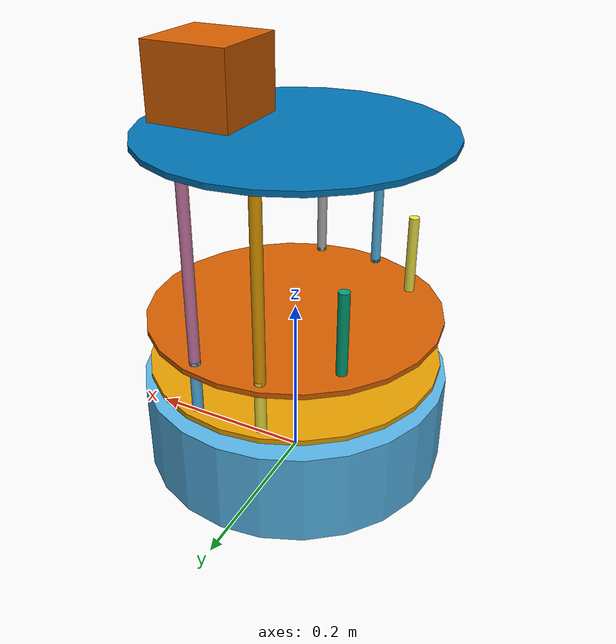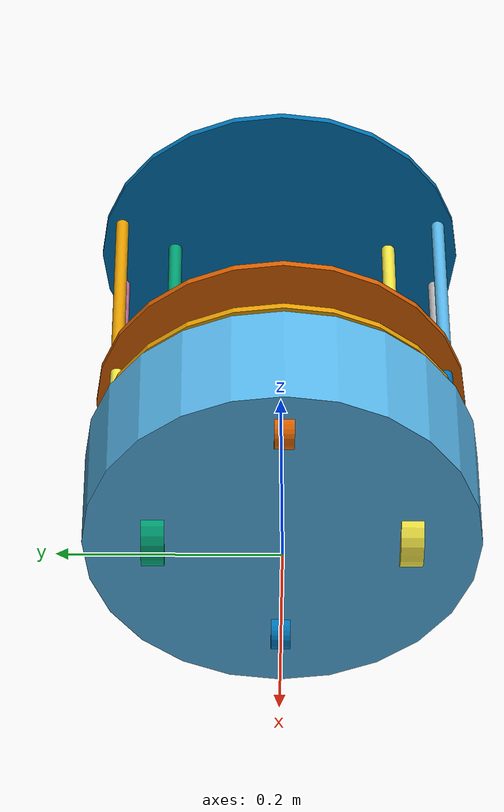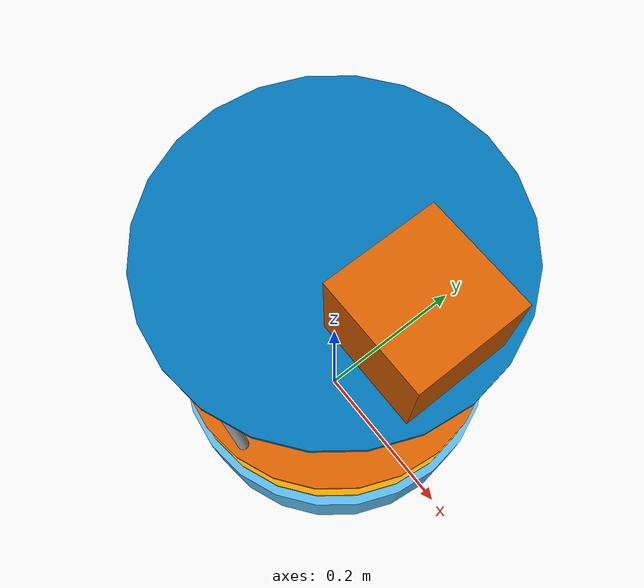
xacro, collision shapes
<?xml version="1.0"?>
<!--
    - Base      : kobuki
    - Stacks    : hexagons
    - 3d Sensor : kinect
-->
<robot name="turtlebot" xmlns:xacro="http://ros.org/wiki/xacro">
  <xacro:include filename="$(find follow_simulation_description)/urdf/turtlebot_common_library.urdf.xacro" />
  <xacro:include filename="$(find follow_simulation_description)/urdf/kobuki.urdf.xacro" />
  <xacro:include filename="$(find follow_simulation_description)/urdf/stacks/hexagons.urdf.xacro"/>
  <xacro:include filename="$(find follow_simulation_description)/urdf/sensors/hokuyo.urdf.xacro"/>
  <xacro:include filename="$(find follow_simulation_description)/urdf/kobuki_move.urdf.xacro"/>
  <xacro:include filename="$(find follow_simulation_description)/urdf/turtlebot_gazebo.urdf.xacro"/>
  <xacro:include filename="$(find follow_simulation_description)/urdf/kobuki_gazebo.urdf.xacro"/>

  <xacro:kobuki ns="robot1/"/>
  <xacro:kobuki_sim ns="robot1/"/>
  <xacro:stack_hexagons parent="robot1/base_link" ns="robot1/"/>
  <xacro:sensor_hokuyo ns="robot1/"/>

  <xacro:odom_vel ns="robot1/"/>
  <xacro:turtlebot_sim_2dsensor ns="robot1/"/>
</robot>

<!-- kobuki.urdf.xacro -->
<robot name="kobuki" xmlns:xacro="http://ros.org/wiki/xacro">
  <xacro:include filename="$(find follow_simulation_description)/urdf/common_properties.urdf.xacro"/>

  <!-- Kobuki -->
  <xacro:macro name="kobuki" params="ns">
    <link name="${ns}base_footprint"/>
    <joint name="${ns}base_joint" type="fixed">
      <origin xyz="0 0 0.0102" rpy="0 0 0" />
      <parent link="${ns}base_footprint"/>
      <child link="${ns}base_link" />
    </joint>
    <link name="${ns}base_link">
      <visual>
        <geometry>
          <!-- new mesh -->
          <mesh filename="package://follow_simulation_description/meshes/main_body.dae" />
        </geometry>
        <origin xyz="0.001 0 0.05199" rpy="0 0 0"/>
      </visual>
      <collision name="base">
        <geometry>
          <cylinder length="0.10938" radius="0.178"/>
        </geometry>
        <origin xyz="0.0 0 0.05949" rpy="0 0 0"/>
      </collision>
      <inertial>
        <!-- COM experimentally determined -->
        <origin xyz="0.01 0 0"/>
        <mass value="2.4"/> <!-- 2.4/2.6 kg for small/big battery pack -->
        <inertia ixx="0.019995" ixy="0.0" ixz="0.0"
                 iyy="0.019995" iyz="0.0"
                 izz="0.03675" />
      </inertial>
    </link>

    <joint name="${ns}wheel_left_joint" type="continuous">
      <parent link="${ns}base_link"/>
      <child link="${ns}wheel_left_link"/>
      <origin xyz="0.00 ${0.23/2} 0.0250" rpy="${-M_PI/2} 0 0"/>
      <axis xyz="0 0 1"/>
    </joint>
    <link name="${ns}wheel_left_link">
      <visual>
        <geometry>
          <mesh filename="package://follow_simulation_description/meshes/wheel.dae"/>
        </geometry>
        <origin xyz="0 0 0" rpy="0 0 0"/>
      </visual>
      <collision>
        <geometry>
          <cylinder length="0.0206" radius="0.035"/>
        </geometry>
        <origin rpy="0 0 0" xyz="0 0 0"/>
      </collision>
      <inertial>
        <mass value="0.01" />
        <origin xyz="0 0 0" />
        <inertia ixx="0.001" ixy="0.0" ixz="0.0"
                 iyy="0.001" iyz="0.0"
                 izz="0.001" />
      </inertial>
    </link>

    <joint name="${ns}wheel_right_joint" type="continuous">
      <parent link="${ns}base_link"/>
      <child link="${ns}wheel_right_link"/>
      <origin xyz="0.00 -${0.23/2} 0.0250" rpy="${-M_PI/2} 0 0"/>
      <axis xyz="0 0 1"/>
    </joint>
    <link name="${ns}wheel_right_link">
      <visual>
        <geometry>
          <mesh filename="package://follow_simulation_description/meshes/wheel.dae"/>
        </geometry>
        <origin xyz="0 0 0" rpy="0 0 0"/>
      </visual>
      <collision>
        <geometry>
          <cylinder length="0.0206" radius="0.035"/>
        </geometry>
        <origin rpy="0 0 0" xyz="0 0 0"/>
      </collision>
      <inertial>
        <mass value="0.01" />
        <origin xyz="0 0 0" />
        <inertia ixx="0.001" ixy="0.0" ixz="0.0"
                 iyy="0.001" iyz="0.0"
                 izz="0.001" />
      </inertial>
    </link>

    <joint name="${ns}caster_front_joint" type="fixed">
      <parent link="${ns}base_link"/>
      <child link="${ns}caster_front_link"/>
      <origin xyz="0.115 0.0 0.007" rpy="${-M_PI/2} 0 0"/>
    </joint>
    <link name="${ns}caster_front_link">
      <collision>
        <geometry>
          <cylinder length="0.0176" radius="0.017"/>
        </geometry>
        <origin rpy="0 0 0" xyz="0 0 0"/>
      </collision>
      <inertial>
        <mass value="0.01" />
        <origin xyz="0 0 0" />
        <inertia ixx="0.001" ixy="0.0" ixz="0.0"
                 iyy="0.001" iyz="0.0"
                 izz="0.001" />
      </inertial>
    </link>

    <joint name="${ns}caster_back_joint" type="fixed">
      <parent link="${ns}base_link"/>
      <child link="${ns}caster_back_link"/>
      <origin xyz="-0.135 0.0 0.009" rpy="${-M_PI/2} 0 0"/>
    </joint>
    <link name="${ns}caster_back_link">
      <collision>
        <geometry>
          <cylinder length="0.0176" radius="0.017"/>
        </geometry>
        <origin rpy="0 0 0" xyz="0 0 0"/>
      </collision>
      <inertial>
        <mass value="0.01" />
        <origin xyz="0 0 0" />
        <inertia ixx="0.001" ixy="0.0" ixz="0.0"
                 iyy="0.001" iyz="0.0"
                 izz="0.001" />
      </inertial>
    </link>

    <!-- Kobuki's sensors -->
    <joint name="${ns}gyro_joint" type="fixed">
      <axis xyz="0 1 0"/>
      <origin xyz="0.056 0.062 0.0202" rpy="0 0 0"/>
      <parent link="${ns}base_link"/>
      <child link="${ns}gyro_link"/>
    </joint>
    <link name="${ns}gyro_link">
      <inertial>
        <mass value="0.001"/>
        <origin xyz="0 0 0" rpy="0 0 0"/>
        <inertia ixx="0.0001" ixy="0" ixz="0"
                 iyy="0.000001" iyz="0"
                 izz="0.0001"/>
      </inertial>
    </link>

    <joint name="${ns}cliff_sensor_left_joint" type="fixed">
      <origin xyz="0.08734 0.13601 0.0214" rpy="0 ${M_PI/2} 0" />
      <parent link="${ns}base_link"/>
      <child link="${ns}cliff_sensor_left_link" />
    </joint>
    <link name="${ns}cliff_sensor_left_link">
      <inertial>
        <mass value="0.0001" />
        <origin xyz="0 0 0" />
        <inertia ixx="0.0001" ixy="0.0" ixz="0.0"
                 iyy="0.0001" iyz="0.0"
                 izz="0.0001" />
      </inertial>
    </link>

    <joint name="${ns}cliff_sensor_right_joint" type="fixed">
      <origin xyz="0.085 -0.13601 0.0214" rpy="0 ${M_PI/2} 0" />
      <parent link="${ns}base_link"/>
      <child link="${ns}cliff_sensor_right_link" />
    </joint>
    <link name="${ns}cliff_sensor_right_link">
      <inertial>
        <mass value="0.0001" />
        <origin xyz="0 0 0" />
        <inertia ixx="0.0001" ixy="0.0" ixz="0.0"
                 iyy="0.0001" iyz="0.0"
                 izz="0.0001" />
      </inertial>
    </link>

    <joint name="${ns}cliff_sensor_front_joint" type="fixed">
      <origin xyz="0.156 0.00 0.0214" rpy="0 ${M_PI/2} 0" />
      <parent link="${ns}base_link"/>
      <child link="${ns}cliff_sensor_front_link" />
    </joint>
    <link name="${ns}cliff_sensor_front_link">
      <inertial>
        <mass value="0.0001" />
        <origin xyz="0 0 0" />
        <inertia ixx="0.0001" ixy="0.0" ixz="0.0"
                 iyy="0.0001" iyz="0.0"
                 izz="0.0001" />
      </inertial>
    </link>

  </xacro:macro>
</robot>

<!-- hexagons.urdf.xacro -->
<!--
  Hexagon stacks
 -->
<robot name="stack_hexagons" xmlns:xacro="http://ros.org/wiki/xacro">
  <xacro:include filename="$(find follow_simulation_description)/urdf/common_properties.urdf.xacro"/>

  <!-- Xacro properties -->
  <xacro:property name="M_SCALE" value="0.001"/>

  <!-- Xacro macros -->
  <!-- Pole macros -->
  <xacro:macro name="stack_bottom_pole" params="parent number x_loc y_loc z_loc ns">
    <joint name="${ns}pole_bottom_${number}_joint" type="fixed">
      <origin xyz="${x_loc} ${y_loc} ${z_loc}" rpy="0 0 0"/>
      <parent link="${parent}"/>
      <child link="${ns}pole_bottom_${number}_link"/>
    </joint>
    <link name="${ns}pole_bottom_${number}_link">
      <visual>
        <origin xyz="0 0 0" rpy="0 0 0"/>
        <geometry>
          <mesh filename="package://follow_simulation_description/meshes/stacks/hexagons/pole_bottom.dae"/>
        </geometry>
      </visual>
      <collision>
        <origin xyz="0 0 0" rpy="0 0 0"/>
        <geometry>
          <cylinder length="0.0492" radius="0.006"/>
        </geometry>
      </collision>
      <inertial>
        <mass value="0.008"/>
        <origin xyz="0 0 0" rpy="0 0 0"/>
        <inertia ixx="0.000001686" ixy="0.0" ixz="0.0"
                 iyy="0.000001686" iyz="0.0"
                 izz="0.000000144"/>
      </inertial>
    </link>
  </xacro:macro>

  <xacro:macro name="stack_middle_pole" params="parent number x_loc y_loc z_loc ns">
    <joint name="${ns}pole_middle_${number}_joint" type="fixed">
      <origin xyz="${x_loc} ${y_loc} ${z_loc}" rpy="0 0 0" />
      <parent link="${parent}"/>
      <child link="${ns}pole_middle_${number}_link"/>
    </joint>
    <link name="${ns}pole_middle_${number}_link">
      <visual>
        <origin xyz="0 0 0" rpy="0 ${M_PI} 0"/>
        <geometry>
          <mesh filename="package://follow_simulation_description/meshes/stacks/hexagons/pole_middle.dae"/>
        </geometry>
      </visual>
      <collision>
        <origin xyz="0 0 0" rpy="0 0 0"/>
        <geometry>
          <cylinder length="0.0608" radius="0.006"/>
        </geometry>
      </collision>
      <inertial>
        <mass value="0.012"/>
        <origin xyz="0 0 0"/>
        <inertia ixx="0.000003805" ixy="0.0" ixz="0.0"
                 iyy="0.000003805" iyz="0.0"
                 izz="0.000000216"/>
      </inertial>
    </link>
  </xacro:macro>

  <xacro:macro name="stack_top_pole" params="parent number x_loc y_loc z_loc ns">
    <joint name="${ns}pole_top_${number}_joint" type="fixed">
      <origin xyz="${x_loc} ${y_loc} ${z_loc}" rpy="0 0 0"/>
      <parent link="${parent}"/>
      <child link="${ns}pole_top_${number}_link"/>
    </joint>
    <link name="${ns}pole_top_${number}_link">
      <visual>
        <origin xyz=" 0 0 0" rpy="0 0 0"/>
        <geometry>
          <mesh filename="package://follow_simulation_description/meshes/stacks/hexagons/pole_top.dae"/>
        </geometry>
      </visual>
      <collision>
        <origin xyz="0 0 0" rpy="0 0 0"/>
        <geometry>
          <cylinder length="0.2032" radius="0.006"/>
        </geometry>
      </collision>
      <inertial>
        <mass value="0.060"/>
        <origin xyz="0 0 0"/>
        <inertia ixx="0.000206991" ixy="0.0" ixz="0.0"
                 iyy="0.000206991" iyz="0.0"
                 izz="0.000001080"/>
      </inertial>
    </link>
  </xacro:macro>

  <xacro:macro name="stack_3d_sensor_pole" params="parent number x_loc y_loc z_loc ns">
    <joint name="${ns}pole_kinect_${number}_joint" type="fixed">
      <origin xyz="${x_loc} ${y_loc} ${z_loc}" rpy="0 0 0"/>
      <parent link="${parent}"/>
      <child link="${ns}pole_kinect_${number}_link"/>
    </joint>
    <link name="${ns}pole_kinect_${number}_link">
      <visual>
        <origin xyz="0 0 0" rpy="0 0 0"/>
        <geometry>
          <mesh filename="package://follow_simulation_description/meshes/stacks/hexagons/pole_kinect.dae" />
        </geometry>
      </visual>
      <collision>
        <origin xyz="0 0 0" rpy="0 0 0"/>
        <geometry>
          <cylinder length="0.0936" radius="0.006"/>
        </geometry>
      </collision>
      <inertial>
        <mass value="0.020"/>
        <origin xyz="0 0 0"/>
        <inertia ixx="0.000014782" ixy="0.0" ixz="0.0"
                 iyy="0.000014782" iyz="0.0"
                 izz="0.000000360"/>
      </inertial>
    </link>
  </xacro:macro>

  <xacro:macro name="stack_hexagons" params="parent ns">
    <xacro:stack_bottom_pole parent="${parent}" number="0" x_loc= "0.120" y_loc= "0.082" z_loc="0.1028" ns="${ns}"/>
    <xacro:stack_bottom_pole parent="${parent}" number="1" x_loc= "0.055" y_loc= "0.120" z_loc="0.1028" ns="${ns}"/>
    <xacro:stack_bottom_pole parent="${parent}" number="2" x_loc="-0.055" y_loc= "0.120" z_loc="0.1028" ns="${ns}"/>
    <xacro:stack_bottom_pole parent="${parent}" number="3" x_loc= "0.120" y_loc="-0.082" z_loc="0.1028" ns="${ns}"/>
    <xacro:stack_bottom_pole parent="${parent}" number="4" x_loc= "0.055" y_loc="-0.120" z_loc="0.1028" ns="${ns}"/>
    <xacro:stack_bottom_pole parent="${parent}" number="5" x_loc="-0.055" y_loc="-0.120" z_loc="0.1028" ns="${ns}"/>

    <joint name="${ns}plate_bottom_joint" type="fixed">
      <origin xyz="0.02364 0.0 0.1306" rpy="0 0 0"/>
      <parent link="${parent}"/>
      <child link="${ns}plate_bottom_link"/>
    </joint>
    <link name="${ns}plate_bottom_link">
      <visual>
        <origin xyz="0 0 0" rpy="0 0 0"/>
        <geometry>
          <mesh filename="package://follow_simulation_description/meshes/stacks/hexagons/plate_bottom.dae"/>
        </geometry>
      </visual>
      <collision>
        <origin xyz="-0.02364 0 0" rpy="0 0 0"/>
        <geometry>
          <cylinder length="0.006" radius="0.170"/>
        </geometry>
      </collision>
      <inertial>
        <mass value="0.520" />
        <origin xyz="0 0 0" />
        <inertia ixx="0.003328" ixy="0.0" ixz="0.0"
                 iyy="0.003328" iyz="0.0"
                 izz="0.006656" />
      </inertial>
    </link>

    <xacro:stack_middle_pole parent="${parent}" number="0" x_loc= "0.0381" y_loc= "0.1505" z_loc="0.1640" ns="${ns}"/>
    <xacro:stack_middle_pole parent="${parent}" number="1" x_loc= "0.0381" y_loc="-0.1505" z_loc="0.1640" ns="${ns}"/>
    <xacro:stack_middle_pole parent="${parent}" number="2" x_loc="-0.0381" y_loc= "0.1505" z_loc="0.1640" ns="${ns}"/>
    <xacro:stack_middle_pole parent="${parent}" number="3" x_loc="-0.0381" y_loc="-0.1505" z_loc="0.1640" ns="${ns}"/>

    <joint name="${ns}plate_middle_joint" type="fixed">
      <origin xyz="-0.01364 0.0 0.1874" rpy="0 0 0"/>
      <parent link="${parent}"/>
      <child link="${ns}plate_middle_link"/>
    </joint>
    <link name="${ns}plate_middle_link">
      <visual>
        <origin xyz="0 0 0" rpy="0 0 0"/>
        <geometry>
          <mesh filename="package://follow_simulation_description/meshes/stacks/hexagons/plate_middle.dae"/>
        </geometry>
      </visual>
      <collision>
        <origin xyz="0.01364 0.0 0.0" rpy="0 0 0"/>
        <geometry>
          <cylinder length="0.006" radius="0.170"/>
        </geometry>
      </collision>
      <inertial>
        <mass value="0.520" />
        <origin xyz="0 0 0" />
        <inertia ixx="0.003328" ixy="0.0" ixz="0.0"
                 iyy="0.003328" iyz="0.0"
                 izz="0.006656" />
      </inertial>
    </link>

    <xacro:stack_top_pole parent="${parent}" number="0" x_loc= "0.0381" y_loc= "0.1505" z_loc="0.2920" ns="${ns}"/>
    <xacro:stack_top_pole parent="${parent}" number="1" x_loc= "0.0381" y_loc="-0.1505" z_loc="0.2920" ns="${ns}"/>
    <xacro:stack_top_pole parent="${parent}" number="2" x_loc="-0.0381" y_loc= "0.1505" z_loc="0.2920" ns="${ns}"/>
    <xacro:stack_top_pole parent="${parent}" number="3" x_loc="-0.0381" y_loc="-0.1505" z_loc="0.2920" ns="${ns}"/>
    <xacro:stack_3d_sensor_pole parent="${parent}" number="0" x_loc="-0.1024" y_loc= "0.098" z_loc="0.2372" ns="${ns}"/>
    <xacro:stack_3d_sensor_pole parent="${parent}" number="1" x_loc="-0.1024" y_loc="-0.098" z_loc="0.2372" ns="${ns}"/>

    <joint name="${ns}plate_top_joint" type="fixed">
      <origin xyz="-0.01364 0.0  0.3966" rpy="0 0 0"/>
      <parent link="${parent}"/>
      <child link="${ns}plate_top_link"/>
    </joint>
    <link name="${ns}plate_top_link">
      <visual>
        <origin xyz="0 0 0" rpy="0 0 0"/>
        <geometry>
          <mesh filename="package://follow_simulation_description/meshes/stacks/hexagons/plate_top.dae"/>
        </geometry>
      </visual>
      <collision>
        <origin xyz="0.01364 0 0" rpy="0 0 0"/>
        <geometry>
          <cylinder length="0.006" radius="0.170"/>
        </geometry>
      </collision>
      <inertial>
        <mass value="0.520"/>
        <origin xyz="0 0 0"/>
        <inertia ixx="0.003328" ixy="0.0" ixz="0.0"
                 iyy="0.003328" iyz="0.0"
                 izz="0.006656" />
      </inertial>
    </link>
  </xacro:macro>
</robot>

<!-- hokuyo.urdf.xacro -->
<robot name="sensor_hokuyo" xmlns:xacro="http://ros.org/wiki/xacro">
  <xacro:include filename="$(find follow_simulation_description)/urdf/turtlebot_properties.urdf.xacro"/>

  <xacro:macro name="sensor_hokuyo" params="ns">
   	 <joint name="${ns}laser" type="fixed">
	    <axis xyz="0 0 0" />
	    <origin xyz="0.10 0 0.435" rpy="0 0 0"/>
	    <parent link="${ns}base_link"/>
	    <child link="${ns}laser"/>
     	</joint>

	  <!-- Hokuyo Laser -->
	  <link name="${ns}laser">
	    <collision>
	      <origin xyz="0 0 0" rpy="0 0 0"/>
	      <geometry>
	    <box size="0.1 0.1 0.1"/>
	      </geometry>
	    </collision>

	    <visual>
	      <origin xyz="0 0 0" rpy="0 0 0"/>
	      <geometry>
		<mesh filename="package://follow_simulation_description/meshes/sensors/hokuyo.dae"/>
	      </geometry>
	    </visual>

	    <inertial>
	      <mass value="1e-5" />
	      <origin xyz="0 0 0" rpy="0 0 0"/>
	      <inertia ixx="1e-6" ixy="0" ixz="0" iyy="1e-6" iyz="0" izz="1e-6" />
	    </inertial>
	  </link>
  </xacro:macro>
</robot>
